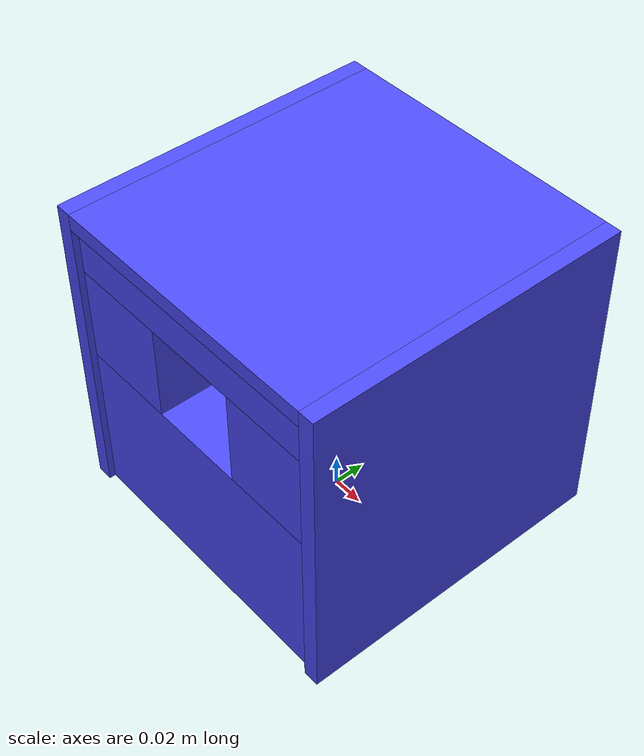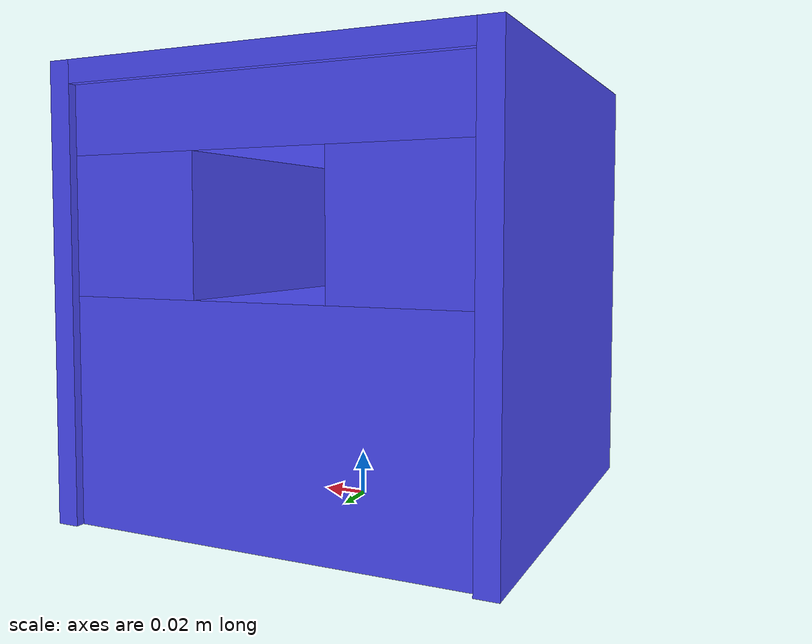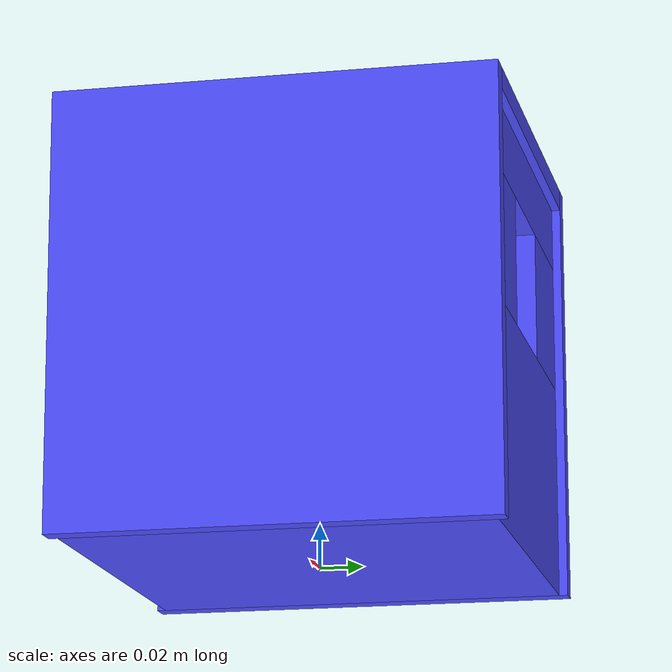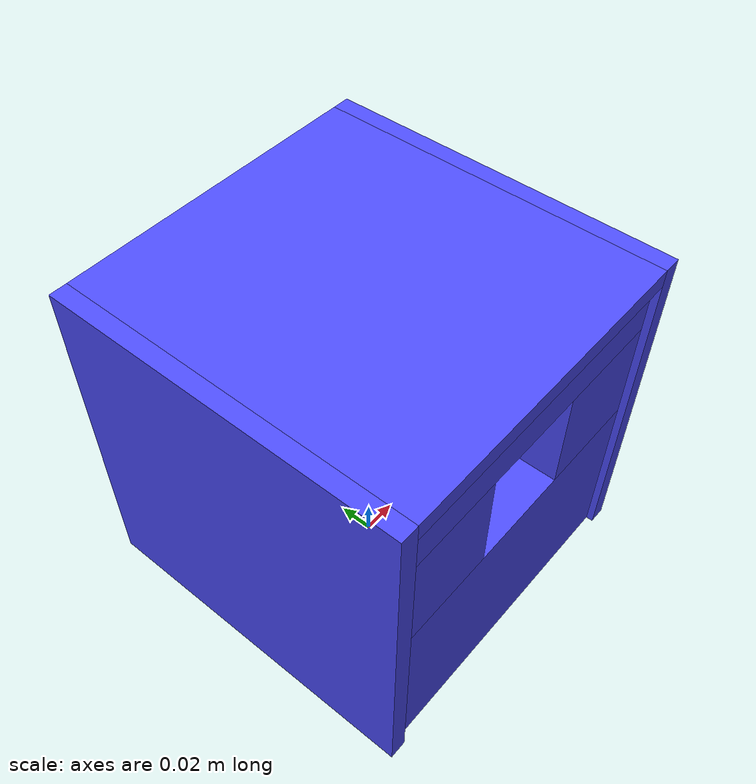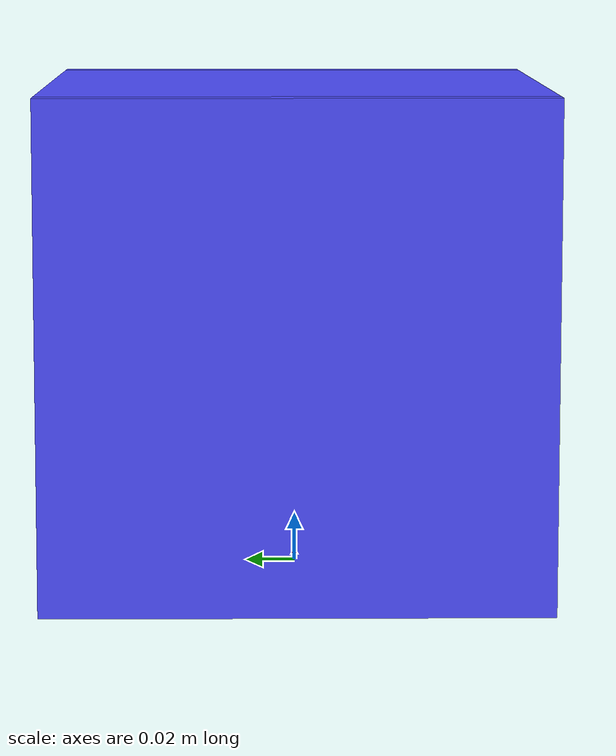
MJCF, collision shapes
<mujoco model="peg_block">
    <compiler angle="radian" inertiafromgeom="auto" inertiagrouprange="4 5"/>
    <asset>
        <texture name="T_peg_block_wood" type="cube" file="../textures/wood1.png"/>

        <material name="peg_block_col" rgba="0.3 0.3 1.0 0.5" shininess="0" specular="0"/>
        <material name="peg_block_outer" rgba="0.45 0.78 1.00 1" shininess="1" reflectance=".3" specular=".35"/>
        <material name="peg_block_inner" rgba="0.95 0.72 0.18 1" shininess="1" reflectance=".3" specular=".35"/>

        <mesh file="../objects/meshes/peg_block/block_inner.stl" name="block_inner"/>
        <mesh file="../objects/meshes/peg_block/block_outer.stl" name="block_outer"/>
    </asset>

    <default>
      <default class="peg_block_base">
          <joint armature="0.001" damping="2" limited="true"/>
          <geom conaffinity="0" contype="0" group="1" type="mesh"/>
          <position ctrllimited="true" ctrlrange="0 1.57"/>
          <default class="peg_block_viz">
              <geom condim="4" type="mesh"/>
          </default>
          <default class="peg_block_col">
              <geom conaffinity="1" condim="3" contype="1" group="4" material="peg_block_col" solimp="0.99 0.99 0.01" solref="0.01 1"/>
          </default>
      </default>
    </default>

    <worldbody>
        <body name="box" pos="0 0 0">
            <body childclass="peg_block_base">
                <geom material="peg_block_inner" mesh="block_inner" pos="0 0 0.095"/>
                <geom material="peg_block_outer" mesh="block_outer" pos="0 0 0.1"/>
                <geom class="peg_block_col" pos="0 0 0.195" size="0.09 0.1 0.005" type="box" mass="1000"/>
                <geom class="peg_block_col" pos="0 0 0.05" size="0.09 0.096 0.05" type="box" mass="1000"/>
                <geom class="peg_block_col" pos="-0.06 0 0.13" size="0.03 0.096 0.03" type="box" mass="1000"/>
                <geom class="peg_block_col" pos="0.06 0 0.13" size="0.03 0.096 0.03" type="box" mass="1000"/>
                <geom class="peg_block_col" pos="0 0 0.175" size="0.09 0.096 0.015" type="box" mass="1000"/>
                <geom class="peg_block_col" pos="0.095 0 0.1" size="0.005 0.1 0.1" type="box" mass="1000"/>
                <geom class="peg_block_col" pos="-0.095 0 0.1" size="0.005 0.1 0.1" type="box" mass="1000"/>
                <body name="hole" pos="0 -.096 0.13"></body>
                <body name="bottom_right_corner_collision_box_1" pos="0.1 -0.11 0.01" ></body>
                <body name="top_left_corner_collision_box_1" pos="-0.1 -.15 0.096" ></body>
                <body name="bottom_right_corner_collision_box_2" pos="0.1 -0.11 0.16"></body>
                <body name="top_left_corner_collision_box_2" pos="-0.1 -.17 0.19" ></body>
            </body>
            <body name="target" pos="0 -0.096 .13"></body>
        </body>
    </worldbody>
</mujoco>
